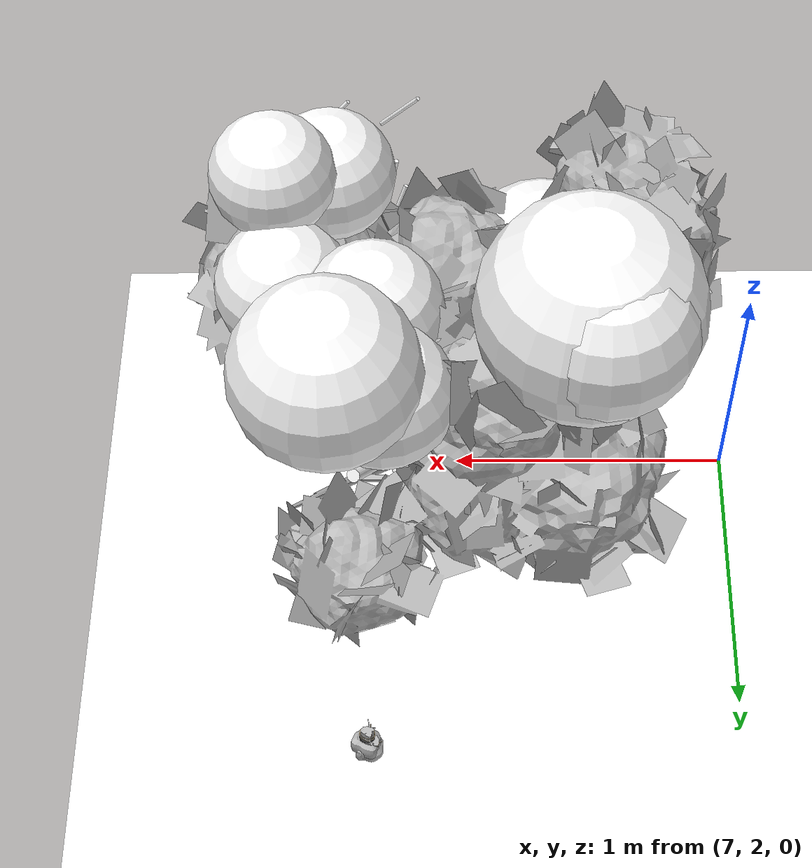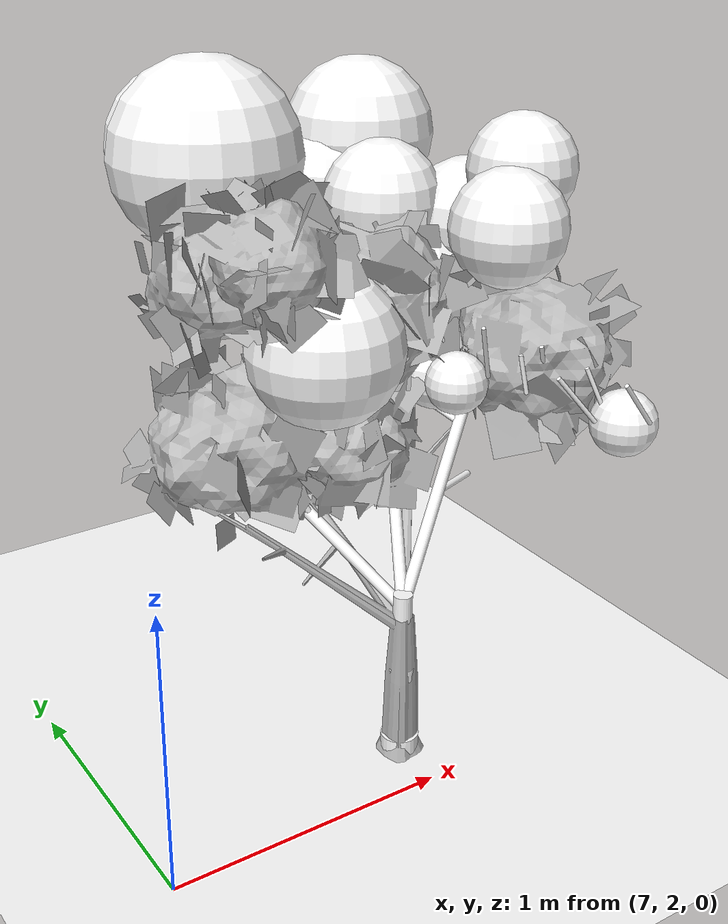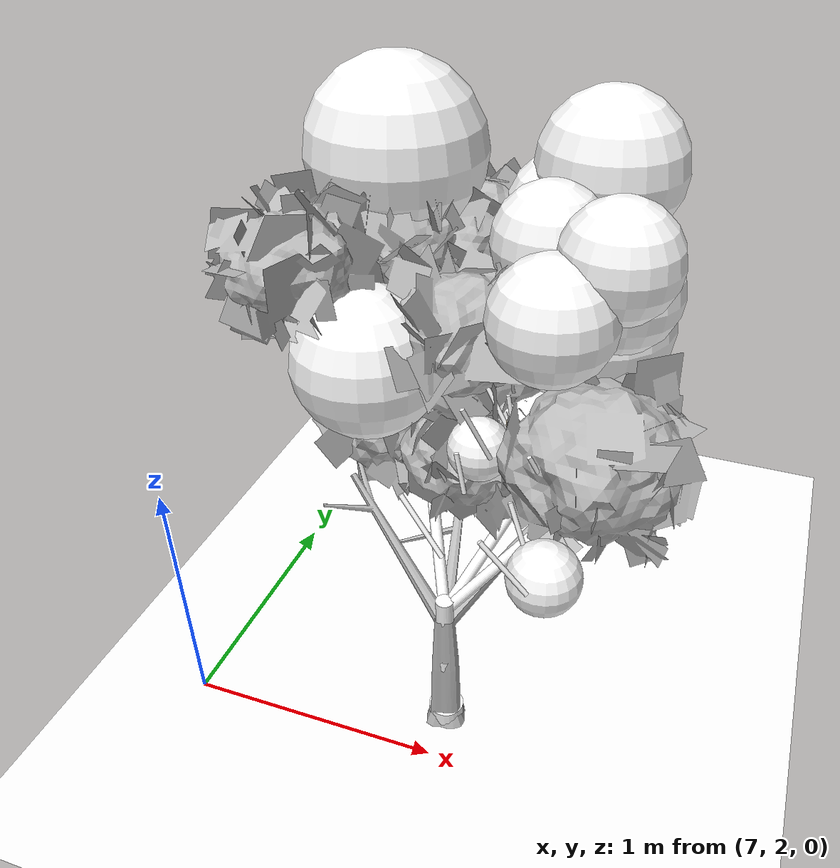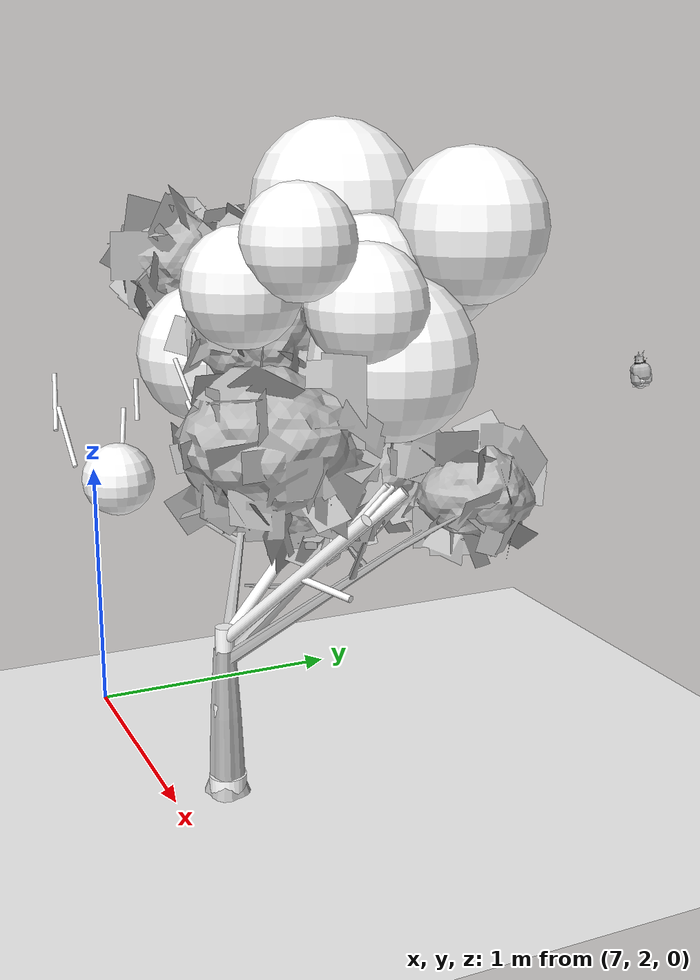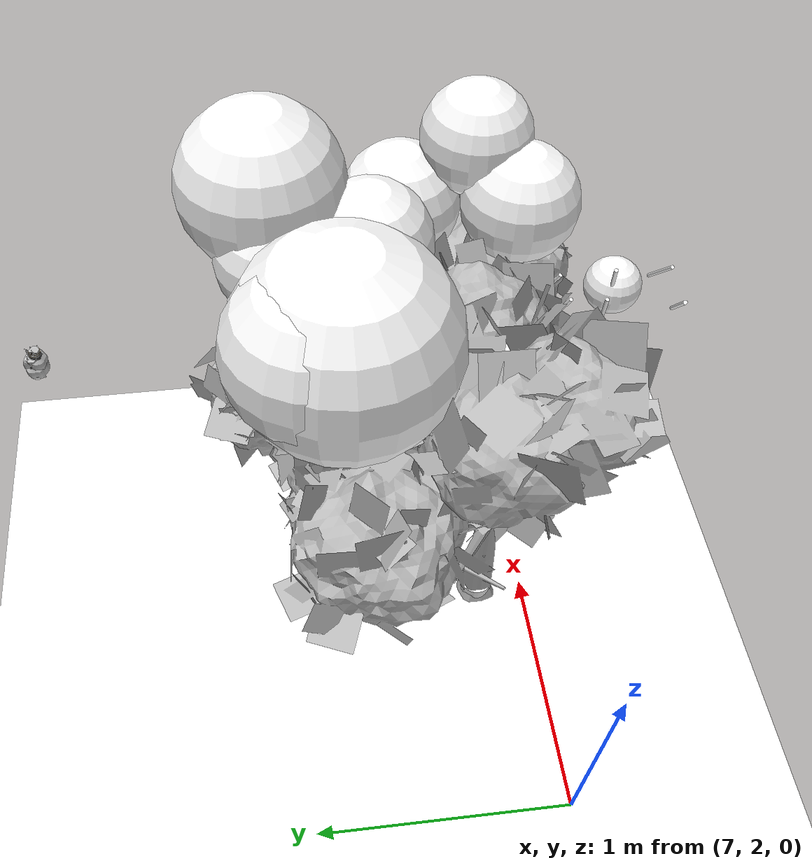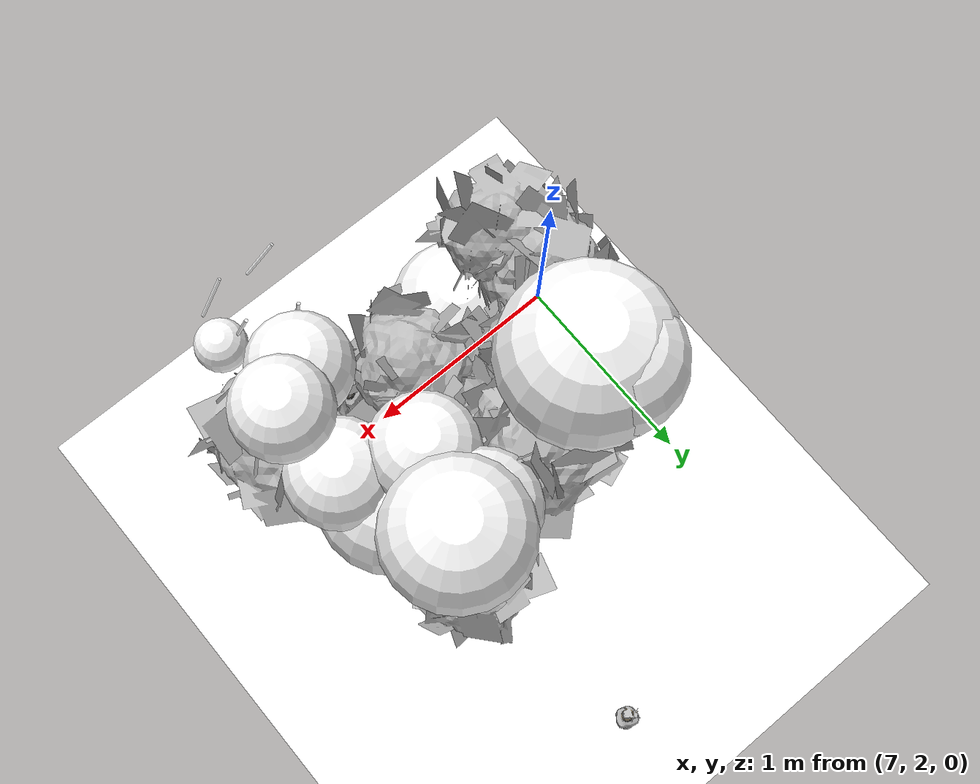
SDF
<sdf version="1.11">
 <world name="peach_orchard">
  <model name="ground">
   <static>true</static>
   <link name="link">
    <visual name="soil">
     <geometry><plane><normal>0 0 1</normal><size>32 22</size></plane></geometry>
     <material>
      <ambient>1 1 1 1</ambient>
      <diffuse>1 1 1 1</diffuse>
      <specular>0.1 0.1 0.1 1</specular>
      <pbr>
       <metal>
        <albedo_map>textures/soil_albedo.png</albedo_map>
        <normal_map type="tangent">textures/soil_normal.png</normal_map>
        <roughness>0.95</roughness>
        <metalness>0</metalness>
       </metal>
      </pbr>
     </material>
    </visual>
    <collision name="c_soil">
     <geometry><plane><normal>0 0 1</normal><size>32 22</size></plane></geometry>
    </collision>
   </link>
  </model>
  <model name="tree_r4_t4">
   <pose>8 2.2 0 0 0 0</pose>
   <static>true</static>
   <link name="link">
    <visual name="tree_mesh">
     <pose>0 0 0 0 0 0.193578</pose>
     <geometry>
      <mesh><uri>model://peach_sim/meshes/peach_tree_a.glb</uri><scale>0.953311 0.953311 0.953311</scale></mesh>
     </geometry>
    </visual>
    <visual name="trunk_0">
     <pose>0 0 0.175573 0 0 0</pose>
     <geometry><cylinder><radius>0.0467835</radius><length>0.351146</length></cylinder></geometry>
     <material>
      <ambient>1 1 1 1</ambient>
      <diffuse>1 1 1 1</diffuse>
      <specular>0.1 0.1 0.1 1</specular>
      <pbr>
       <metal>
        <albedo_map>textures/bark_albedo.png</albedo_map>
        <normal_map type="tangent">textures/bark_normal.png</normal_map>
        <roughness>0.9</roughness>
        <metalness>0</metalness>
       </metal>
      </pbr>
     </material>
    </visual>
    <collision name="c_trunk_0">
     <pose>0 0 0.175573 0 0 0</pose>
     <geometry><cylinder><radius>0.0467835</radius><length>0.351146</length></cylinder></geometry>
    </collision>
    <visual name="trunk_1">
     <pose>0 0 0.494796 0 0 0</pose>
     <geometry><cylinder><radius>0.0336841</radius><length>0.287301</length></cylinder></geometry>
     <material>
      <ambient>1 1 1 1</ambient>
      <diffuse>1 1 1 1</diffuse>
      <specular>0.1 0.1 0.1 1</specular>
      <pbr>
       <metal>
        <albedo_map>textures/bark_albedo.png</albedo_map>
        <normal_map type="tangent">textures/bark_normal.png</normal_map>
        <roughness>0.9</roughness>
        <metalness>0</metalness>
       </metal>
      </pbr>
     </material>
    </visual>
    <collision name="c_trunk_1">
     <pose>0 0 0.494796 0 0 0</pose>
     <geometry><cylinder><radius>0.0336841</radius><length>0.287301</length></cylinder></geometry>
    </collision>
    <visual name="root_flare">
     <pose>0 0 0.035 0 0 0</pose>
     <geometry><cylinder><radius>0.067836</radius><length>0.07</length></cylinder></geometry>
     <material>
      <ambient>1 1 1 1</ambient>
      <diffuse>1 1 1 1</diffuse>
      <specular>0.1 0.1 0.1 1</specular>
      <pbr>
       <metal>
        <albedo_map>textures/bark_albedo.png</albedo_map>
        <normal_map type="tangent">textures/bark_normal.png</normal_map>
        <roughness>0.95</roughness>
        <metalness>0</metalness>
       </metal>
      </pbr>
     </material>
    </visual>
    <visual name="scaffold_0">
     <pose>0.151807 0.278084 0.866516 0 0.848534 1.0711</pose>
     <geometry><cylinder><radius>0.022</radius><length>0.844506</length></cylinder></geometry>
     <material>
      <ambient>1 1 1 1</ambient>
      <diffuse>1 1 1 1</diffuse>
      <specular>0.1 0.1 0.1 1</specular>
      <pbr>
       <metal>
        <albedo_map>textures/bark_albedo.png</albedo_map>
        <normal_map type="tangent">textures/bark_normal.png</normal_map>
        <roughness>0.9</roughness>
        <metalness>0</metalness>
       </metal>
      </pbr>
     </material>
    </visual>
    <collision name="c_scaffold_0">
     <pose>0.151807 0.278084 0.866516 0 0.848534 1.0711</pose>
     <geometry><cylinder><radius>0.022</radius><length>0.844506</length></cylinder></geometry>
    </collision>
    <visual name="branchlet_0_0">
     <pose>0.188097 0.343257 1.03816 0 0.0618561 0.98099</pose>
     <geometry><cylinder><radius>0.012</radius><length>0.224438</length></cylinder></geometry>
     <material>
      <ambient>1 1 1 1</ambient>
      <diffuse>1 1 1 1</diffuse>
      <specular>0.1 0.1 0.1 1</specular>
      <pbr>
       <metal>
        <albedo_map>textures/bark_albedo.png</albedo_map>
        <normal_map type="tangent">textures/bark_normal.png</normal_map>
        <roughness>0.9</roughness>
        <metalness>0</metalness>
       </metal>
      </pbr>
     </material>
    </visual>
    <visual name="branchlet_0_1">
     <pose>0.179052 0.456282 1.0292 0 0.86987 1.69003</pose>
     <geometry><cylinder><radius>0.012</radius><length>0.277283</length></cylinder></geometry>
     <material>
      <ambient>1 1 1 1</ambient>
      <diffuse>1 1 1 1</diffuse>
      <specular>0.1 0.1 0.1 1</specular>
      <pbr>
       <metal>
        <albedo_map>textures/bark_albedo.png</albedo_map>
        <normal_map type="tangent">textures/bark_normal.png</normal_map>
        <roughness>0.9</roughness>
        <metalness>0</metalness>
       </metal>
      </pbr>
     </material>
    </visual>
    <visual name="branchlet_0_2">
     <pose>0.262685 0.398676 1.05275 0 0.676794 0.699759</pose>
     <geometry><cylinder><radius>0.012</radius><length>0.34795</length></cylinder></geometry>
     <material>
      <ambient>1 1 1 1</ambient>
      <diffuse>1 1 1 1</diffuse>
      <specular>0.1 0.1 0.1 1</specular>
      <pbr>
       <metal>
        <albedo_map>textures/bark_albedo.png</albedo_map>
        <normal_map type="tangent">textures/bark_normal.png</normal_map>
        <roughness>0.9</roughness>
        <metalness>0</metalness>
       </metal>
      </pbr>
     </material>
    </visual>
    <visual name="scaffold_1">
     <pose>0.245551 0.16181 0.855 0 0.832438 0.582654</pose>
     <geometry><cylinder><radius>0.022</radius><length>0.795244</length></cylinder></geometry>
     <material>
      <ambient>1 1 1 1</ambient>
      <diffuse>1 1 1 1</diffuse>
      <specular>0.1 0.1 0.1 1</specular>
      <pbr>
       <metal>
        <albedo_map>textures/bark_albedo.png</albedo_map>
        <normal_map type="tangent">textures/bark_normal.png</normal_map>
        <roughness>0.9</roughness>
        <metalness>0</metalness>
       </metal>
      </pbr>
     </material>
    </visual>
    <collision name="c_scaffold_1">
     <pose>0.245551 0.16181 0.855 0 0.832438 0.582654</pose>
     <geometry><cylinder><radius>0.022</radius><length>0.795244</length></cylinder></geometry>
    </collision>
    <visual name="branchlet_1_0">
     <pose>0.382473 0.392298 1.11817 0 1.14448 2.06261</pose>
     <geometry><cylinder><radius>0.012</radius><length>0.258326</length></cylinder></geometry>
     <material>
      <ambient>1 1 1 1</ambient>
      <diffuse>1 1 1 1</diffuse>
      <specular>0.1 0.1 0.1 1</specular>
      <pbr>
       <metal>
        <albedo_map>textures/bark_albedo.png</albedo_map>
        <normal_map type="tangent">textures/bark_normal.png</normal_map>
        <roughness>0.9</roughness>
        <metalness>0</metalness>
       </metal>
      </pbr>
     </material>
    </visual>
    <visual name="branchlet_1_1">
     <pose>0.372342 0.225774 0.868172 0 1.67558 0.439364</pose>
     <geometry><cylinder><radius>0.012</radius><length>0.230328</length></cylinder></geometry>
     <material>
      <ambient>1 1 1 1</ambient>
      <diffuse>1 1 1 1</diffuse>
      <specular>0.1 0.1 0.1 1</specular>
      <pbr>
       <metal>
        <albedo_map>textures/bark_albedo.png</albedo_map>
        <normal_map type="tangent">textures/bark_normal.png</normal_map>
        <roughness>0.9</roughness>
        <metalness>0</metalness>
       </metal>
      </pbr>
     </material>
    </visual>
    <visual name="scaffold_2">
     <pose>-0.122559 0.238581 0.779098 0 0.950196 2.04534</pose>
     <geometry><cylinder><radius>0.022</radius><length>0.659397</length></cylinder></geometry>
     <material>
      <ambient>1 1 1 1</ambient>
      <diffuse>1 1 1 1</diffuse>
      <specular>0.1 0.1 0.1 1</specular>
      <pbr>
       <metal>
        <albedo_map>textures/bark_albedo.png</albedo_map>
        <normal_map type="tangent">textures/bark_normal.png</normal_map>
        <roughness>0.9</roughness>
        <metalness>0</metalness>
       </metal>
      </pbr>
     </material>
    </visual>
    <collision name="c_scaffold_2">
     <pose>-0.122559 0.238581 0.779098 0 0.950196 2.04534</pose>
     <geometry><cylinder><radius>0.022</radius><length>0.659397</length></cylinder></geometry>
    </collision>
    <visual name="branchlet_2_0">
     <pose>-0.246346 0.350084 0.978606 0 0.575727 2.79803</pose>
     <geometry><cylinder><radius>0.012</radius><length>0.317901</length></cylinder></geometry>
     <material>
      <ambient>1 1 1 1</ambient>
      <diffuse>1 1 1 1</diffuse>
      <specular>0.1 0.1 0.1 1</specular>
      <pbr>
       <metal>
        <albedo_map>textures/bark_albedo.png</albedo_map>
        <normal_map type="tangent">textures/bark_normal.png</normal_map>
        <roughness>0.9</roughness>
        <metalness>0</metalness>
       </metal>
      </pbr>
     </material>
    </visual>
    <visual name="branchlet_2_1">
     <pose>-0.192616 0.480156 0.891191 0 1.55458 1.56585</pose>
     <geometry><cylinder><radius>0.012</radius><length>0.208414</length></cylinder></geometry>
     <material>
      <ambient>1 1 1 1</ambient>
      <diffuse>1 1 1 1</diffuse>
      <specular>0.1 0.1 0.1 1</specular>
      <pbr>
       <metal>
        <albedo_map>textures/bark_albedo.png</albedo_map>
        <normal_map type="tangent">textures/bark_normal.png</normal_map>
        <roughness>0.9</roughness>
        <metalness>0</metalness>
       </metal>
      </pbr>
     </material>
    </visual>
    <visual name="canopy_0">
     <pose>0.362184 0.477042 1.62299 0 0 0</pose>
     <geometry><sphere><radius>0.280387</radius></sphere></geometry>
     <material>
      <ambient>1 1 1 1</ambient>
      <diffuse>1 1 1 1</diffuse>
      <specular>0.1 0.1 0.1 1</specular>
      <pbr>
       <metal>
        <albedo_map>textures/leaf_albedo.png</albedo_map>
        <normal_map type="tangent">textures/leaf_normal.png</normal_map>
        <roughness>0.85</roughness>
        <metalness>0</metalness>
       </metal>
      </pbr>
     </material>
    </visual>
    <collision name="c_canopy_0">
     <pose>0.362184 0.477042 1.62299 0 0 0</pose>
     <geometry><sphere><radius>0.280387</radius></sphere></geometry>
    </collision>
    <visual name="canopy_1">
     <pose>0.496148 0.0949155 2.01781 0 0 0</pose>
     <geometry><sphere><radius>0.181516</radius></sphere></geometry>
     <material>
      <ambient>1 1 1 1</ambient>
      <diffuse>1 1 1 1</diffuse>
      <specular>0.1 0.1 0.1 1</specular>
      <pbr>
       <metal>
        <albedo_map>textures/leaf_albedo.png</albedo_map>
        <normal_map type="tangent">textures/leaf_normal.png</normal_map>
        <roughness>0.85</roughness>
        <metalness>0</metalness>
       </metal>
      </pbr>
     </material>
    </visual>
    <collision name="c_canopy_1">
     <pose>0.496148 0.0949155 2.01781 0 0 0</pose>
     <geometry><sphere><radius>0.181516</radius></sphere></geometry>
    </collision>
    <visual name="canopy_2">
     <pose>-0.27394 0.0597406 1.56947 0 0 0</pose>
     <geometry><sphere><radius>0.252609</radius></sphere></geometry>
     <material>
      <ambient>1 1 1 1</ambient>
      <diffuse>1 1 1 1</diffuse>
      <specular>0.1 0.1 0.1 1</specular>
      <pbr>
       <metal>
        <albedo_map>textures/leaf_albedo.png</albedo_map>
        <normal_map type="tangent">textures/leaf_normal.png</normal_map>
        <roughness>0.85</roughness>
        <metalness>0</metalness>
       </metal>
      </pbr>
     </material>
    </visual>
    <collision name="c_canopy_2">
     <pose>-0.27394 0.0597406 1.56947 0 0 0</pose>
     <geometry><sphere><radius>0.252609</radius></sphere></geometry>
    </collision>
    <visual name="canopy_3">
     <pose>0.321317 0.780817 2.03281 0 0 0</pose>
     <geometry><sphere><radius>0.263016</radius></sphere></geometry>
     <material>
      <ambient>1 1 1 1</ambient>
      <diffuse>1 1 1 1</diffuse>
      <specular>0.1 0.1 0.1 1</specular>
      <pbr>
       <metal>
        <albedo_map>textures/leaf_albedo.png</albedo_map>
        <normal_map type="tangent">textures/leaf_normal.png</normal_map>
        <roughness>0.85</roughness>
        <metalness>0</metalness>
       </metal>
      </pbr>
     </material>
    </visual>
    <visual name="canopy_4">
     <pose>0.347252 -0.0317198 1.87376 0 0 0</pose>
     <geometry><sphere><radius>0.192723</radius></sphere></geometry>
     <material>
      <ambient>1 1 1 1</ambient>
      <diffuse>1 1 1 1</diffuse>
      <specular>0.1 0.1 0.1 1</specular>
      <pbr>
       <metal>
        <albedo_map>textures/leaf_albedo.png</albedo_map>
        <normal_map type="tangent">textures/leaf_normal.png</normal_map>
        <roughness>0.85</roughness>
        <metalness>0</metalness>
       </metal>
      </pbr>
     </material>
    </visual>
    <visual name="canopy_5">
     <pose>-0.37885 0.60201 2.06801 0 0 0</pose>
     <geometry><sphere><radius>0.317735</radius></sphere></geometry>
     <material>
      <ambient>1 1 1 1</ambient>
      <diffuse>1 1 1 1</diffuse>
      <specular>0.1 0.1 0.1 1</specular>
      <pbr>
       <metal>
        <albedo_map>textures/leaf_albedo.png</albedo_map>
        <normal_map type="tangent">textures/leaf_normal.png</normal_map>
        <roughness>0.85</roughness>
        <metalness>0</metalness>
       </metal>
      </pbr>
     </material>
    </visual>
    <visual name="canopy_6">
     <pose>0.468306 0.335168 1.81258 0 0 0</pose>
     <geometry><sphere><radius>0.199115</radius></sphere></geometry>
     <material>
      <ambient>1 1 1 1</ambient>
      <diffuse>1 1 1 1</diffuse>
      <specular>0.1 0.1 0.1 1</specular>
      <pbr>
       <metal>
        <albedo_map>textures/leaf_albedo.png</albedo_map>
        <normal_map type="tangent">textures/leaf_normal.png</normal_map>
        <roughness>0.85</roughness>
        <metalness>0</metalness>
       </metal>
      </pbr>
     </material>
    </visual>
    <visual name="canopy_7">
     <pose>0.208306 0.46587 1.87664 0 0 0</pose>
     <geometry><sphere><radius>0.20162</radius></sphere></geometry>
     <material>
      <ambient>1 1 1 1</ambient>
      <diffuse>1 1 1 1</diffuse>
      <specular>0.1 0.1 0.1 1</specular>
      <pbr>
       <metal>
        <albedo_map>textures/leaf_albedo.png</albedo_map>
        <normal_map type="tangent">textures/leaf_normal.png</normal_map>
        <roughness>0.85</roughness>
        <metalness>0</metalness>
       </metal>
      </pbr>
     </material>
    </visual>
    <visual name="canopy_8">
     <pose>-0.414672 0.676329 2.09259 0 0 0</pose>
     <geometry><sphere><radius>0.256067</radius></sphere></geometry>
     <material>
      <ambient>1 1 1 1</ambient>
      <diffuse>1 1 1 1</diffuse>
      <specular>0.1 0.1 0.1 1</specular>
      <pbr>
       <metal>
        <albedo_map>textures/leaf_albedo.png</albedo_map>
        <normal_map type="tangent">textures/leaf_normal.png</normal_map>
        <roughness>0.85</roughness>
        <metalness>0</metalness>
       </metal>
      </pbr>
     </material>
    </visual>
    <visual name="canopy_9">
     <pose>0.177586 0.744144 1.87496 0 0 0</pose>
     <geometry><sphere><radius>0.203959</radius></sphere></geometry>
     <material>
      <ambient>1 1 1 1</ambient>
      <diffuse>1 1 1 1</diffuse>
      <specular>0.1 0.1 0.1 1</specular>
      <pbr>
       <metal>
        <albedo_map>textures/leaf_albedo.png</albedo_map>
        <normal_map type="tangent">textures/leaf_normal.png</normal_map>
        <roughness>0.85</roughness>
        <metalness>0</metalness>
       </metal>
      </pbr>
     </material>
    </visual>
    <visual name="foliage_0">
     <pose>0.146598 -0.0577929 1.40397 0 0 0</pose>
     <geometry><sphere><radius>0.1021</radius></sphere></geometry>
     <material>
      <ambient>1 1 1 1</ambient>
      <diffuse>1 1 1 1</diffuse>
      <specular>0.1 0.1 0.1 1</specular>
      <pbr>
       <metal>
        <albedo_map>textures/leaf_albedo.png</albedo_map>
        <normal_map type="tangent">textures/leaf_normal.png</normal_map>
        <roughness>0.85</roughness>
        <metalness>0</metalness>
       </metal>
      </pbr>
     </material>
    </visual>
    <visual name="foliage_4">
     <pose>0.473045 -0.476627 1.34535 0 0 0</pose>
     <geometry><sphere><radius>0.106495</radius></sphere></geometry>
     <material>
      <ambient>1 1 1 1</ambient>
      <diffuse>1 1 1 1</diffuse>
      <specular>0.1 0.1 0.1 1</specular>
      <pbr>
       <metal>
        <albedo_map>textures/leaf_albedo.png</albedo_map>
        <normal_map type="tangent">textures/leaf_normal.png</normal_map>
        <roughness>0.85</roughness>
        <metalness>0</metalness>
       </metal>
      </pbr>
     </material>
    </visual>
    <visual name="foliage_8">
     <pose>0.259231 0.200868 1.32995 0 0 0</pose>
     <geometry><sphere><radius>0.128493</radius></sphere></geometry>
     <material>
      <ambient>1 1 1 1</ambient>
      <diffuse>1 1 1 1</diffuse>
      <specular>0.1 0.1 0.1 1</specular>
      <pbr>
       <metal>
        <albedo_map>textures/leaf_albedo.png</albedo_map>
        <normal_map type="tangent">textures/leaf_normal.png</normal_map>
        <roughness>0.85</roughness>
        <metalness>0</metalness>
       </metal>
      </pbr>
     </material>
    </visual>
    <visual name="twig_0">
     <pose>0.17232 -0.163406 1.53485 0 0.426681 -2.51561</pose>
     <geometry><cylinder><radius>0.007</radius><length>0.211013</length></cylinder></geometry>
     <material>
      <ambient>1 1 1 1</ambient>
      <diffuse>1 1 1 1</diffuse>
      <specular>0.1 0.1 0.1 1</specular>
      <pbr>
       <metal>
        <albedo_map>textures/bark_albedo.png</albedo_map>
        <normal_map type="tangent">textures/bark_normal.png</normal_map>
        <roughness>0.9</roughness>
        <metalness>0</metalness>
       </metal>
      </pbr>
     </material>
    </visual>
    <visual name="twig_1">
     <pose>0.183193 -0.332719 1.51897 0 0.208403 2.86445</pose>
     <geometry><cylinder><radius>0.007</radius><length>0.12989</length></cylinder></geometry>
     <material>
      <ambient>1 1 1 1</ambient>
      <diffuse>1 1 1 1</diffuse>
      <specular>0.1 0.1 0.1 1</specular>
      <pbr>
       <metal>
        <albedo_map>textures/bark_albedo.png</albedo_map>
        <normal_map type="tangent">textures/bark_normal.png</normal_map>
        <roughness>0.9</roughness>
        <metalness>0</metalness>
       </metal>
      </pbr>
     </material>
    </visual>
    <visual name="twig_2">
     <pose>0.167759 -0.585051 1.52935 0 0.698122 2.89315</pose>
     <geometry><cylinder><radius>0.007</radius><length>0.197886</length></cylinder></geometry>
     <material>
      <ambient>1 1 1 1</ambient>
      <diffuse>1 1 1 1</diffuse>
      <specular>0.1 0.1 0.1 1</specular>
      <pbr>
       <metal>
        <albedo_map>textures/bark_albedo.png</albedo_map>
        <normal_map type="tangent">textures/bark_normal.png</normal_map>
        <roughness>0.9</roughness>
        <metalness>0</metalness>
       </metal>
      </pbr>
     </material>
    </visual>
    <visual name="twig_3">
     <pose>0.369802 -0.206072 1.48448 0 0.44819 -2.56956</pose>
     <geometry><cylinder><radius>0.007</radius><length>0.115208</length></cylinder></geometry>
     <material>
      <ambient>1 1 1 1</ambient>
      <diffuse>1 1 1 1</diffuse>
      <specular>0.1 0.1 0.1 1</specular>
      <pbr>
       <metal>
        <albedo_map>textures/bark_albedo.png</albedo_map>
        <normal_map type="tangent">textures/bark_normal.png</normal_map>
        <roughness>0.9</roughness>
        <metalness>0</metalness>
       </metal>
      </pbr>
     </material>
    </visual>
    <visual name="twig_4">
     <pose>0.381168 -0.432698 1.46799 0 0.426049 2.69312</pose>
     <geometry><cylinder><radius>0.007</radius><length>0.138984</length></cylinder></geometry>
     <material>
      <ambient>1 1 1 1</ambient>
      <diffuse>1 1 1 1</diffuse>
      <specular>0.1 0.1 0.1 1</specular>
      <pbr>
       <metal>
        <albedo_map>textures/bark_albedo.png</albedo_map>
        <normal_map type="tangent">textures/bark_normal.png</normal_map>
        <roughness>0.9</roughness>
        <metalness>0</metalness>
       </metal>
      </pbr>
     </material>
    </visual>
    <visual name="twig_5">
     <pose>0.39593 -0.604512 1.46957 0 0.685873 -3.04205</pose>
     <geometry><cylinder><radius>0.007</radius><length>0.19797</length></cylinder></geometry>
     <material>
      <ambient>1 1 1 1</ambient>
      <diffuse>1 1 1 1</diffuse>
      <specular>0.1 0.1 0.1 1</specular>
      <pbr>
       <metal>
        <albedo_map>textures/bark_albedo.png</albedo_map>
        <normal_map type="tangent">textures/bark_normal.png</normal_map>
        <roughness>0.9</roughness>
        <metalness>0</metalness>
       </metal>
      </pbr>
     </material>
    </visual>
    <visual name="twig_6">
     <pose>0.177249 0.0388468 1.49187 0 0.534803 2.93225</pose>
     <geometry><cylinder><radius>0.007</radius><length>0.1865</length></cylinder></geometry>
     <material>
      <ambient>1 1 1 1</ambient>
      <diffuse>1 1 1 1</diffuse>
      <specular>0.1 0.1 0.1 1</specular>
      <pbr>
       <metal>
        <albedo_map>textures/bark_albedo.png</albedo_map>
        <normal_map type="tangent">textures/bark_normal.png</normal_map>
        <roughness>0.9</roughness>
        <metalness>0</metalness>
       </metal>
      </pbr>
     </material>
    </visual>
    <visual name="twig_7">
     <pose>0.218082 0.0273231 1.51029 0 0.20253 2.87982</pose>
     <geometry><cylinder><radius>0.007</radius><length>0.100867</length></cylinder></geometry>
     <material>
      <ambient>1 1 1 1</ambient>
      <diffuse>1 1 1 1</diffuse>
      <specular>0.1 0.1 0.1 1</specular>
      <pbr>
       <metal>
        <albedo_map>textures/bark_albedo.png</albedo_map>
        <normal_map type="tangent">textures/bark_normal.png</normal_map>
        <roughness>0.9</roughness>
        <metalness>0</metalness>
       </metal>
      </pbr>
     </material>
    </visual>
    <visual name="twig_8">
     <pose>0.205948 0.256698 1.50549 0 0.325603 1.99681</pose>
     <geometry><cylinder><radius>0.007</radius><length>0.109578</length></cylinder></geometry>
     <material>
      <ambient>1 1 1 1</ambient>
      <diffuse>1 1 1 1</diffuse>
      <specular>0.1 0.1 0.1 1</specular>
      <pbr>
       <metal>
        <albedo_map>textures/bark_albedo.png</albedo_map>
        <normal_map type="tangent">textures/bark_normal.png</normal_map>
        <roughness>0.9</roughness>
        <metalness>0</metalness>
       </metal>
      </pbr>
     </material>
    </visual>
   </link>
  </model>
  <model name="peach_tree_r4_t4_07">
   <pose>8.22 2.24819 1.38756 0 0.325855 -1.24713</pose>
   <static>true</static>
   <link name="bag">
    <visual name="bag_mesh">
     <pose>0 0 0.0477047 0 0 -0</pose>
     <geometry>
      <mesh><uri>model://peach_sim/meshes/bagged_peach.glb</uri><scale>0.909947 1.10538 1.0842</scale></mesh>
     </geometry>
    </visual>
    <visual name="body">
     <pose>0 0 0.0297047 0 0 0</pose>
     <geometry><ellipsoid><radii>0.034123 0.0287399 0.0320811</radii></ellipsoid></geometry>
     <material>
      <ambient>1 1 1 1</ambient>
      <diffuse>1 1 1 1</diffuse>
      <specular>0.1 0.1 0.1 1</specular>
      <pbr>
       <metal>
        <albedo_map>textures/paper_bag_albedo.png</albedo_map>
        <normal_map type="tangent">textures/paper_bag_normal.png</normal_map>
        <roughness>0.72</roughness>
        <metalness>0</metalness>
       </metal>
      </pbr>
     </material>
    </visual>
    <visual name="bottom_fold">
     <pose>0 0 0.012 0 0 0.35</pose>
     <geometry><box><size>0.0528907 0.0330509 0.022</size></box></geometry>
     <material>
      <ambient>1 1 1 1</ambient>
      <diffuse>1 1 1 1</diffuse>
      <specular>0.1 0.1 0.1 1</specular>
      <pbr>
       <metal>
        <albedo_map>textures/paper_bag_albedo.png</albedo_map>
        <normal_map type="tangent">textures/paper_bag_normal.png</normal_map>
        <roughness>0.8</roughness>
        <metalness>0</metalness>
       </metal>
      </pbr>
     </material>
    </visual>
    <visual name="fruit">
     <pose>0 0 0.0186041 0 0 0</pose>
     <geometry><sphere><radius>0.0255883</radius></sphere></geometry>
     <material>
      <ambient>1 1 1 1</ambient>
      <diffuse>1 1 1 1</diffuse>
      <specular>0.1 0.1 0.1 1</specular>
      <pbr>
       <metal>
        <albedo_map>textures/fruit_skin_albedo.png</albedo_map>
        <normal_map type="tangent">textures/fruit_skin_normal.png</normal_map>
        <roughness>0.55</roughness>
        <metalness>0</metalness>
       </metal>
      </pbr>
     </material>
    </visual>
    <visual name="neck">
     <pose>0 0 0.0684094 0 0 0</pose>
     <geometry><cylinder><radius>0.013</radius><length>0.018</length></cylinder></geometry>
     <material>
      <ambient>1 1 1 1</ambient>
      <diffuse>1 1 1 1</diffuse>
      <specular>0.1 0.1 0.1 1</specular>
      <pbr>
       <metal>
        <albedo_map>textures/paper_bag_albedo.png</albedo_map>
        <normal_map type="tangent">textures/paper_bag_normal.png</normal_map>
        <roughness>0.75</roughness>
        <metalness>0</metalness>
       </metal>
      </pbr>
     </material>
    </visual>
    <visual name="gather">
     <pose>0 0 0.0494094 0 0 0</pose>
     <geometry><cylinder><radius>0.019</radius><length>0.02</length></cylinder></geometry>
     <material>
      <ambient>1 1 1 1</ambient>
      <diffuse>1 1 1 1</diffuse>
      <specular>0.1 0.1 0.1 1</specular>
      <pbr>
       <metal>
        <albedo_map>textures/paper_bag_albedo.png</albedo_map>
        <normal_map type="tangent">textures/paper_bag_normal.png</normal_map>
        <roughness>0.8</roughness>
        <metalness>0</metalness>
       </metal>
      </pbr>
     </material>
    </visual>
    <visual name="inner_paper">
     <pose>0 0 0.0734094 0 0 0</pose>
     <geometry><cylinder><radius>0.01</radius><length>0.008</length></cylinder></geometry>
     <material>
      <ambient>0.180392 0.14902 0.133333 1</ambient>
      <diffuse>0.180392 0.14902 0.133333 1</diffuse>
      <specular>0.1 0.1 0.1 1</specular>
     </material>
    </visual>
    <visual name="wire_0">
     <pose>0 0 0.0634094 0 0 0</pose>
     <geometry><cylinder><radius>0.0205</radius><length>0.0035</length></cylinder></geometry>
     <material>
      <ambient>0.25 0.25 0.25 1</ambient>
      <diffuse>0.25 0.25 0.25 1</diffuse>
      <specular>0.1 0.1 0.1 1</specular>
     </material>
    </visual>
    <visual name="wire_1">
     <pose>0 0 0.0704094 0 0 0</pose>
     <geometry><cylinder><radius>0.0205</radius><length>0.0035</length></cylinder></geometry>
     <material>
      <ambient>0.25 0.25 0.25 1</ambient>
      <diffuse>0.25 0.25 0.25 1</diffuse>
      <specular>0.1 0.1 0.1 1</specular>
     </material>
    </visual>
    <visual name="wire_tail">
     <pose>0.01 0 0.0714094 0 0.521618 0</pose>
     <geometry><cylinder><radius>0.0012</radius><length>0.026</length></cylinder></geometry>
     <material>
      <ambient>0.25 0.25 0.25 1</ambient>
      <diffuse>0.25 0.25 0.25 1</diffuse>
      <specular>0.1 0.1 0.1 1</specular>
     </material>
    </visual>
    <collision name="c_body">
     <pose>0 0 0.0297047 0 0 0</pose>
     <geometry><cylinder><radius>0.034123</radius><length>0.0594094</length></cylinder></geometry>
    </collision>
   </link>
  </model>
  <model name="peach_tree_r4_t4_08">
   <pose>8.22 2.44502 1.37305 0 0.0995773 -2.5799</pose>
   <static>true</static>
   <link name="bag">
    <visual name="bag_mesh">
     <pose>0 0 0.0494645 0 0 -0</pose>
     <geometry>
      <mesh><uri>model://peach_sim/meshes/bagged_peach.glb</uri><scale>0.923758 1.14146 1.12419</scale></mesh>
     </geometry>
    </visual>
    <visual name="body">
     <pose>0 0 0.0314645 0 0 0</pose>
     <geometry><ellipsoid><radii>0.0346409 0.0296781 0.0339817</radii></ellipsoid></geometry>
     <material>
      <ambient>1 1 1 1</ambient>
      <diffuse>1 1 1 1</diffuse>
      <specular>0.1 0.1 0.1 1</specular>
      <pbr>
       <metal>
        <albedo_map>textures/paper_bag_albedo.png</albedo_map>
        <normal_map type="tangent">textures/paper_bag_normal.png</normal_map>
        <roughness>0.72</roughness>
        <metalness>0</metalness>
       </metal>
      </pbr>
     </material>
    </visual>
    <visual name="bottom_fold">
     <pose>0 0 0.012 0 0 0.35</pose>
     <geometry><box><size>0.0536934 0.0341298 0.022</size></box></geometry>
     <material>
      <ambient>1 1 1 1</ambient>
      <diffuse>1 1 1 1</diffuse>
      <specular>0.1 0.1 0.1 1</specular>
      <pbr>
       <metal>
        <albedo_map>textures/paper_bag_albedo.png</albedo_map>
        <normal_map type="tangent">textures/paper_bag_normal.png</normal_map>
        <roughness>0.8</roughness>
        <metalness>0</metalness>
       </metal>
      </pbr>
     </material>
    </visual>
    <visual name="fruit">
     <pose>0 0 0.0182758 0 0 0</pose>
     <geometry><sphere><radius>0.0252469</radius></sphere></geometry>
     <material>
      <ambient>1 1 1 1</ambient>
      <diffuse>1 1 1 1</diffuse>
      <specular>0.1 0.1 0.1 1</specular>
      <pbr>
       <metal>
        <albedo_map>textures/fruit_skin_albedo.png</albedo_map>
        <normal_map type="tangent">textures/fruit_skin_normal.png</normal_map>
        <roughness>0.55</roughness>
        <metalness>0</metalness>
       </metal>
      </pbr>
     </material>
    </visual>
    <visual name="neck">
     <pose>0 0 0.0719291 0 0 0</pose>
     <geometry><cylinder><radius>0.013</radius><length>0.018</length></cylinder></geometry>
     <material>
      <ambient>1 1 1 1</ambient>
      <diffuse>1 1 1 1</diffuse>
      <specular>0.1 0.1 0.1 1</specular>
      <pbr>
       <metal>
        <albedo_map>textures/paper_bag_albedo.png</albedo_map>
        <normal_map type="tangent">textures/paper_bag_normal.png</normal_map>
        <roughness>0.75</roughness>
        <metalness>0</metalness>
       </metal>
      </pbr>
     </material>
    </visual>
    <visual name="gather">
     <pose>0 0 0.0529291 0 0 0</pose>
     <geometry><cylinder><radius>0.019</radius><length>0.02</length></cylinder></geometry>
     <material>
      <ambient>1 1 1 1</ambient>
      <diffuse>1 1 1 1</diffuse>
      <specular>0.1 0.1 0.1 1</specular>
      <pbr>
       <metal>
        <albedo_map>textures/paper_bag_albedo.png</albedo_map>
        <normal_map type="tangent">textures/paper_bag_normal.png</normal_map>
        <roughness>0.8</roughness>
        <metalness>0</metalness>
       </metal>
      </pbr>
     </material>
    </visual>
    <visual name="inner_paper">
     <pose>0 0 0.0769291 0 0 0</pose>
     <geometry><cylinder><radius>0.01</radius><length>0.008</length></cylinder></geometry>
     <material>
      <ambient>0.180392 0.14902 0.133333 1</ambient>
      <diffuse>0.180392 0.14902 0.133333 1</diffuse>
      <specular>0.1 0.1 0.1 1</specular>
     </material>
    </visual>
    <visual name="wire_0">
     <pose>0 0 0.0669291 0 0 0</pose>
     <geometry><cylinder><radius>0.0205</radius><length>0.0035</length></cylinder></geometry>
     <material>
      <ambient>0.25 0.25 0.25 1</ambient>
      <diffuse>0.25 0.25 0.25 1</diffuse>
      <specular>0.1 0.1 0.1 1</specular>
     </material>
    </visual>
    <visual name="wire_1">
     <pose>0 0 0.0739291 0 0 0</pose>
     <geometry><cylinder><radius>0.0205</radius><length>0.0035</length></cylinder></geometry>
     <material>
      <ambient>0.25 0.25 0.25 1</ambient>
      <diffuse>0.25 0.25 0.25 1</diffuse>
      <specular>0.1 0.1 0.1 1</specular>
     </material>
    </visual>
    <visual name="wire_tail">
     <pose>0.01 0 0.0749291 0 0.521618 0</pose>
     <geometry><cylinder><radius>0.0012</radius><length>0.026</length></cylinder></geometry>
     <material>
      <ambient>0.25 0.25 0.25 1</ambient>
      <diffuse>0.25 0.25 0.25 1</diffuse>
      <specular>0.1 0.1 0.1 1</specular>
     </material>
    </visual>
    <collision name="c_body">
     <pose>0 0 0.0314645 0 0 0</pose>
     <geometry><cylinder><radius>0.0346409</radius><length>0.0629291</length></cylinder></geometry>
    </collision>
   </link>
  </model>
  <model name="peach_tree_r4_t5_03">
   <pose>8.22 3.77738 1.4118 0 0.246421 2.93516</pose>
   <static>true</static>
   <link name="bag">
    <visual name="bag_mesh">
     <pose>0 0 0.0451677 0 0 0</pose>
     <geometry>
      <mesh><uri>model://peach_sim/meshes/bagged_peach.glb</uri><scale>0.908213 1.09254 1.02654</scale></mesh>
     </geometry>
    </visual>
    <visual name="body">
     <pose>0 0 0.0271677 0 0 0</pose>
     <geometry><ellipsoid><radii>0.034058 0.028406 0.0293411</radii></ellipsoid></geometry>
     <material>
      <ambient>1 1 1 1</ambient>
      <diffuse>1 1 1 1</diffuse>
      <specular>0.1 0.1 0.1 1</specular>
      <pbr>
       <metal>
        <albedo_map>textures/paper_bag_albedo.png</albedo_map>
        <normal_map type="tangent">textures/paper_bag_normal.png</normal_map>
        <roughness>0.72</roughness>
        <metalness>0</metalness>
       </metal>
      </pbr>
     </material>
    </visual>
    <visual name="bottom_fold">
     <pose>0 0 0.012 0 0 0.35</pose>
     <geometry><box><size>0.0527899 0.032667 0.022</size></box></geometry>
     <material>
      <ambient>1 1 1 1</ambient>
      <diffuse>1 1 1 1</diffuse>
      <specular>0.1 0.1 0.1 1</specular>
      <pbr>
       <metal>
        <albedo_map>textures/paper_bag_albedo.png</albedo_map>
        <normal_map type="tangent">textures/paper_bag_normal.png</normal_map>
        <roughness>0.8</roughness>
        <metalness>0</metalness>
       </metal>
      </pbr>
     </material>
    </visual>
    <visual name="fruit">
     <pose>0 0 0.0187861 0 0 0</pose>
     <geometry><sphere><radius>0.0257776</radius></sphere></geometry>
     <material>
      <ambient>1 1 1 1</ambient>
      <diffuse>1 1 1 1</diffuse>
      <specular>0.1 0.1 0.1 1</specular>
      <pbr>
       <metal>
        <albedo_map>textures/fruit_skin_albedo.png</albedo_map>
        <normal_map type="tangent">textures/fruit_skin_normal.png</normal_map>
        <roughness>0.55</roughness>
        <metalness>0</metalness>
       </metal>
      </pbr>
     </material>
    </visual>
    <visual name="neck">
     <pose>0 0 0.0633354 0 0 0</pose>
     <geometry><cylinder><radius>0.013</radius><length>0.018</length></cylinder></geometry>
     <material>
      <ambient>1 1 1 1</ambient>
      <diffuse>1 1 1 1</diffuse>
      <specular>0.1 0.1 0.1 1</specular>
      <pbr>
       <metal>
        <albedo_map>textures/paper_bag_albedo.png</albedo_map>
        <normal_map type="tangent">textures/paper_bag_normal.png</normal_map>
        <roughness>0.75</roughness>
        <metalness>0</metalness>
       </metal>
      </pbr>
     </material>
    </visual>
    <visual name="gather">
     <pose>0 0 0.0443354 0 0 0</pose>
     <geometry><cylinder><radius>0.019</radius><length>0.02</length></cylinder></geometry>
     <material>
      <ambient>1 1 1 1</ambient>
      <diffuse>1 1 1 1</diffuse>
      <specular>0.1 0.1 0.1 1</specular>
      <pbr>
       <metal>
        <albedo_map>textures/paper_bag_albedo.png</albedo_map>
        <normal_map type="tangent">textures/paper_bag_normal.png</normal_map>
        <roughness>0.8</roughness>
        <metalness>0</metalness>
       </metal>
      </pbr>
     </material>
    </visual>
    <visual name="inner_paper">
     <pose>0 0 0.0683354 0 0 0</pose>
     <geometry><cylinder><radius>0.01</radius><length>0.008</length></cylinder></geometry>
     <material>
      <ambient>0.180392 0.14902 0.133333 1</ambient>
      <diffuse>0.180392 0.14902 0.133333 1</diffuse>
      <specular>0.1 0.1 0.1 1</specular>
     </material>
    </visual>
    <visual name="wire_0">
     <pose>0 0 0.0583354 0 0 0</pose>
     <geometry><cylinder><radius>0.0205</radius><length>0.0035</length></cylinder></geometry>
     <material>
      <ambient>0.25 0.25 0.25 1</ambient>
      <diffuse>0.25 0.25 0.25 1</diffuse>
      <specular>0.1 0.1 0.1 1</specular>
     </material>
    </visual>
    <visual name="wire_1">
     <pose>0 0 0.0653354 0 0 0</pose>
     <geometry><cylinder><radius>0.0205</radius><length>0.0035</length></cylinder></geometry>
     <material>
      <ambient>0.25 0.25 0.25 1</ambient>
      <diffuse>0.25 0.25 0.25 1</diffuse>
      <specular>0.1 0.1 0.1 1</specular>
     </material>
    </visual>
    <visual name="wire_tail">
     <pose>0.01 0 0.0663354 0 0.521618 0</pose>
     <geometry><cylinder><radius>0.0012</radius><length>0.026</length></cylinder></geometry>
     <material>
      <ambient>0.25 0.25 0.25 1</ambient>
      <diffuse>0.25 0.25 0.25 1</diffuse>
      <specular>0.1 0.1 0.1 1</specular>
     </material>
    </visual>
    <collision name="c_body">
     <pose>0 0 0.0271677 0 0 0</pose>
     <geometry><cylinder><radius>0.034058</radius><length>0.0543354</length></cylinder></geometry>
    </collision>
   </link>
  </model>
  <model name="peach_tree_r4_t5_04">
   <pose>8.22 3.78153 1.43549 0 0.162866 -2.03704</pose>
   <static>true</static>
   <link name="bag">
    <visual name="bag_mesh">
     <pose>0 0 0.0462313 0 0 -0</pose>
     <geometry>
      <mesh><uri>model://peach_sim/meshes/bagged_peach.glb</uri><scale>0.922835 1.10561 1.05071</scale></mesh>
     </geometry>
    </visual>
    <visual name="body">
     <pose>0 0 0.0282313 0 0 0</pose>
     <geometry><ellipsoid><radii>0.0346063 0.0287458 0.0304898</radii></ellipsoid></geometry>
     <material>
      <ambient>1 1 1 1</ambient>
      <diffuse>1 1 1 1</diffuse>
      <specular>0.1 0.1 0.1 1</specular>
      <pbr>
       <metal>
        <albedo_map>textures/paper_bag_albedo.png</albedo_map>
        <normal_map type="tangent">textures/paper_bag_normal.png</normal_map>
        <roughness>0.72</roughness>
        <metalness>0</metalness>
       </metal>
      </pbr>
     </material>
    </visual>
    <visual name="bottom_fold">
     <pose>0 0 0.012 0 0 0.35</pose>
     <geometry><box><size>0.0536398 0.0330577 0.022</size></box></geometry>
     <material>
      <ambient>1 1 1 1</ambient>
      <diffuse>1 1 1 1</diffuse>
      <specular>0.1 0.1 0.1 1</specular>
      <pbr>
       <metal>
        <albedo_map>textures/paper_bag_albedo.png</albedo_map>
        <normal_map type="tangent">textures/paper_bag_normal.png</normal_map>
        <roughness>0.8</roughness>
        <metalness>0</metalness>
       </metal>
      </pbr>
     </material>
    </visual>
    <visual name="fruit">
     <pose>0 0 0.0172355 0 0 0</pose>
     <geometry><sphere><radius>0.0241649</radius></sphere></geometry>
     <material>
      <ambient>1 1 1 1</ambient>
      <diffuse>1 1 1 1</diffuse>
      <specular>0.1 0.1 0.1 1</specular>
      <pbr>
       <metal>
        <albedo_map>textures/fruit_skin_albedo.png</albedo_map>
        <normal_map type="tangent">textures/fruit_skin_normal.png</normal_map>
        <roughness>0.55</roughness>
        <metalness>0</metalness>
       </metal>
      </pbr>
     </material>
    </visual>
    <visual name="neck">
     <pose>0 0 0.0654626 0 0 0</pose>
     <geometry><cylinder><radius>0.013</radius><length>0.018</length></cylinder></geometry>
     <material>
      <ambient>1 1 1 1</ambient>
      <diffuse>1 1 1 1</diffuse>
      <specular>0.1 0.1 0.1 1</specular>
      <pbr>
       <metal>
        <albedo_map>textures/paper_bag_albedo.png</albedo_map>
        <normal_map type="tangent">textures/paper_bag_normal.png</normal_map>
        <roughness>0.75</roughness>
        <metalness>0</metalness>
       </metal>
      </pbr>
     </material>
    </visual>
    <visual name="gather">
     <pose>0 0 0.0464626 0 0 0</pose>
     <geometry><cylinder><radius>0.019</radius><length>0.02</length></cylinder></geometry>
     <material>
      <ambient>1 1 1 1</ambient>
      <diffuse>1 1 1 1</diffuse>
      <specular>0.1 0.1 0.1 1</specular>
      <pbr>
       <metal>
        <albedo_map>textures/paper_bag_albedo.png</albedo_map>
        <normal_map type="tangent">textures/paper_bag_normal.png</normal_map>
        <roughness>0.8</roughness>
        <metalness>0</metalness>
       </metal>
      </pbr>
     </material>
    </visual>
    <visual name="inner_paper">
     <pose>0 0 0.0704626 0 0 0</pose>
     <geometry><cylinder><radius>0.01</radius><length>0.008</length></cylinder></geometry>
     <material>
      <ambient>0.180392 0.14902 0.133333 1</ambient>
      <diffuse>0.180392 0.14902 0.133333 1</diffuse>
      <specular>0.1 0.1 0.1 1</specular>
     </material>
    </visual>
    <visual name="wire_0">
     <pose>0 0 0.0604626 0 0 0</pose>
     <geometry><cylinder><radius>0.0205</radius><length>0.0035</length></cylinder></geometry>
     <material>
      <ambient>0.25 0.25 0.25 1</ambient>
      <diffuse>0.25 0.25 0.25 1</diffuse>
      <specular>0.1 0.1 0.1 1</specular>
     </material>
    </visual>
    <visual name="wire_1">
     <pose>0 0 0.0674626 0 0 0</pose>
     <geometry><cylinder><radius>0.0205</radius><length>0.0035</length></cylinder></geometry>
     <material>
      <ambient>0.25 0.25 0.25 1</ambient>
      <diffuse>0.25 0.25 0.25 1</diffuse>
      <specular>0.1 0.1 0.1 1</specular>
     </material>
    </visual>
    <visual name="wire_tail">
     <pose>0.01 0 0.0684626 0 0.521618 0</pose>
     <geometry><cylinder><radius>0.0012</radius><length>0.026</length></cylinder></geometry>
     <material>
      <ambient>0.25 0.25 0.25 1</ambient>
      <diffuse>0.25 0.25 0.25 1</diffuse>
      <specular>0.1 0.1 0.1 1</specular>
     </material>
    </visual>
    <collision name="c_body">
     <pose>0 0 0.0282313 0 0 0</pose>
     <geometry><cylinder><radius>0.0346063</radius><length>0.0564626</length></cylinder></geometry>
    </collision>
   </link>
  </model>
 </world>
</sdf>
